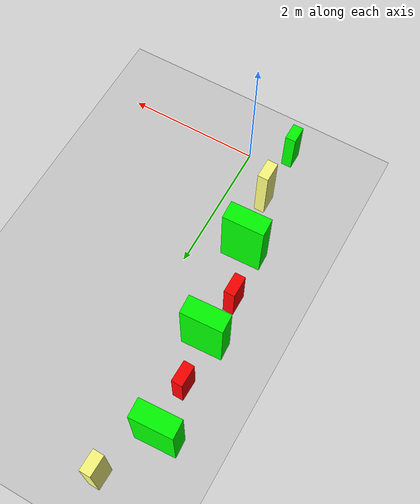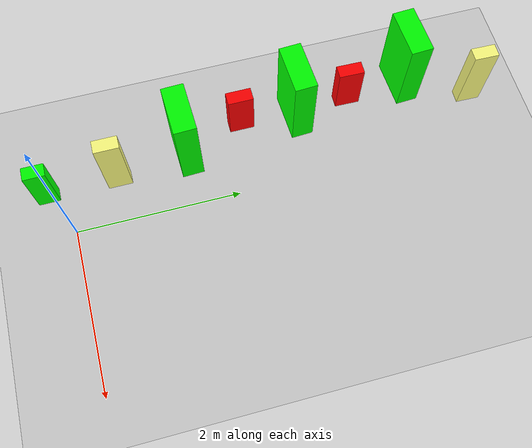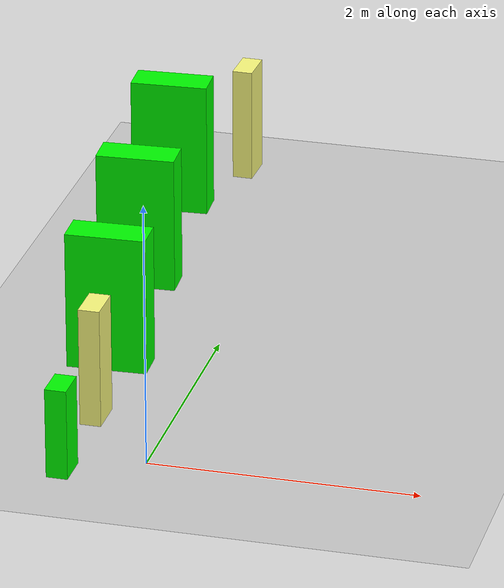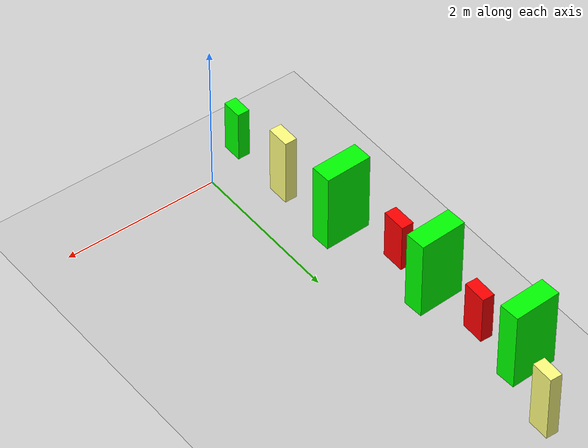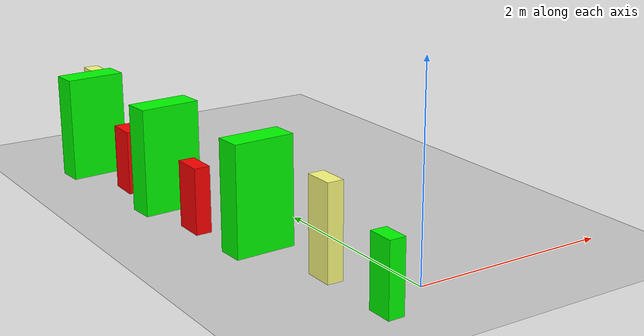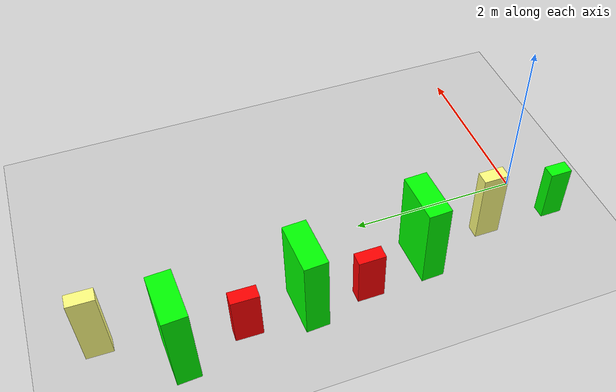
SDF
<sdf version="1.7">
 <world name="default">
  <scene><ambient>0.4 0.4 0.4 1</ambient><background>0.7 0.7 0.7 1</background><shadows>1</shadows></scene>
  <light name="sun" type="directional">
   <pose>0 0 10 0 -0 0</pose>
   <diffuse>0.8 0.8 0.8 1</diffuse>
   <specular>0.1 0.1 0.1 1</specular>
   <attenuation>
    <range>1000</range>
    <constant>0.9</constant>
    <linear>0.01</linear>
    <quadratic>0.001</quadratic>
   </attenuation>
   <direction>-0.5 0.5 -1</direction>
   <spot><inner_angle>0</inner_angle><outer_angle>0</outer_angle><falloff>0</falloff></spot>
  </light>
  <model name="ground_plane">
   <static>1</static>
   <link name="link">
    <collision name="collision">
     <geometry><plane><normal>0 0 1</normal><size>100 100</size></plane></geometry>
     <surface><friction><ode><mu>100</mu><mu2>50</mu2></ode></friction></surface>
    </collision>
    <visual name="visual">
     <cast_shadows>0</cast_shadows>
     <geometry><plane><normal>0 0 1</normal><size>100 100</size></plane></geometry>
     <material>
      <script><uri>file://media/materials/scripts/gazebo.material</uri><name>Gazebo/Grey</name></script>
     </material>
    </visual>
   </link>
  </model>
  <physics name="default_physics" default="0" type="ode">
   <real_time_update_rate>1000</real_time_update_rate>
   <max_step_size>0.001</max_step_size>
   <real_time_factor>1</real_time_factor>
   <ode>
    <solver>
     <type>quick</type>
     <iters>150</iters>
     <precon_iters>0</precon_iters>
     <sor>1.4</sor>
     <use_dynamic_moi_rescaling>1</use_dynamic_moi_rescaling>
    </solver>
    <constraints>
     <cfm>1e-05</cfm>
     <erp>0.2</erp>
     <contact_max_correcting_vel>2000</contact_max_correcting_vel>
     <contact_surface_layer>0.01</contact_surface_layer>
    </constraints>
   </ode>
  </physics>
  <gravity>0 0 -9.8</gravity>
  <magnetic_field>6e-06 2.3e-05 -4.2e-05</magnetic_field>
  <atmosphere type="adiabatic"/>
  <spherical_coordinates>
   <surface_model>EARTH_WGS84</surface_model>
   <latitude_deg>0</latitude_deg>
   <longitude_deg>0</longitude_deg>
   <elevation>0</elevation>
   <heading_deg>0</heading_deg>
  </spherical_coordinates>
  <model name="unit_box_0">
   <pose>-0.546741 -0.255161 0.34458 0 1e-06 1.6e-05</pose>
   <link name="link">
    <inertial>
     <mass>1</mass>
     <inertia>
      <ixx>0.166667</ixx>
      <ixy>0</ixy>
      <ixz>0</ixz>
      <iyy>0.166667</iyy>
      <iyz>0</iyz>
      <izz>0.166667</izz>
     </inertia>
    </inertial>
    <collision name="collision">
     <geometry><box><size>0.158214 0.260262 0.689159</size></box></geometry>
    </collision>
    <visual name="visual">
     <geometry><box><size>0.158214 0.260262 0.689159</size></box></geometry>
     <material>
      <script><name>Gazebo/Grey</name><uri>file://media/materials/scripts/gazebo.material</uri></script>
      <diffuse>0 1 0 1</diffuse>
     </material>
    </visual>
   </link>
  </model>
  <model name="unit_box_0_clone">
   <pose>-0.552334 0.617233 0.456716 0 1e-06 -7.2e-05</pose>
   <link name="link">
    <inertial>
     <mass>1</mass>
     <inertia>
      <ixx>0.166667</ixx>
      <ixy>0</ixy>
      <ixz>0</ixz>
      <iyy>0.166667</iyy>
      <iyz>0</iyz>
      <izz>0.166667</izz>
     </inertia>
    </inertial>
    <collision name="collision">
     <geometry><box><size>0.158214 0.295891 0.913432</size></box></geometry>
    </collision>
    <visual name="visual">
     <geometry><box><size>0.158214 0.295891 0.913432</size></box></geometry>
     <material>
      <script><name>Gazebo/Grey</name><uri>file://media/materials/scripts/gazebo.material</uri></script>
      <diffuse>1 1 0.5 1</diffuse>
     </material>
    </visual>
   </link>
  </model>
  <model name="unit_box_0_clone_0">
   <pose>-0.935156 2.24521 0.327101 0 -1e-06 0.000247</pose>
   <link name="link">
    <inertial>
     <mass>1</mass>
     <inertia>
      <ixx>0.166667</ixx>
      <ixy>0</ixy>
      <ixz>0</ixz>
      <iyy>0.166667</iyy>
      <iyz>0</iyz>
      <izz>0.166667</izz>
     </inertia>
    </inertial>
    <collision name="collision">
     <geometry><box><size>0.158214 0.310694 0.654203</size></box></geometry>
    </collision>
    <visual name="visual">
     <geometry><box><size>0.158214 0.310694 0.654203</size></box></geometry>
     <material>
      <script><name>Gazebo/Grey</name><uri>file://media/materials/scripts/gazebo.material</uri></script>
      <diffuse>1 0 0 1</diffuse>
     </material>
    </visual>
   </link>
  </model>
  <model name="unit_box_0_clone_1">
   <pose>-0.69845 1.5013 0.535371 -1e-06 -5e-06 0.036612</pose>
   <link name="link">
    <inertial>
     <mass>1</mass>
     <inertia>
      <ixx>0.166667</ixx>
      <ixy>0</ixy>
      <ixz>0</ixz>
      <iyy>0.166667</iyy>
      <iyz>0</iyz>
      <izz>0.166667</izz>
     </inertia>
    </inertial>
    <collision name="collision"><geometry><box><size>0.604983 0.267748 1.07075</size></box></geometry></collision>
    <visual name="visual">
     <geometry><box><size>0.604983 0.267748 1.07075</size></box></geometry>
     <material>
      <script><name>Gazebo/Grey</name><uri>file://media/materials/scripts/gazebo.material</uri></script>
      <diffuse>0 1 0 1</diffuse>
     </material>
    </visual>
   </link>
  </model>
  <model name="unit_box_0_clone_1_clone">
   <pose>-0.88482 2.93954 0.535376 -1e-06 2e-06 0.053326</pose>
   <link name="link">
    <inertial>
     <mass>1</mass>
     <inertia>
      <ixx>0.166667</ixx>
      <ixy>0</ixy>
      <ixz>0</ixz>
      <iyy>0.166667</iyy>
      <iyz>0</iyz>
      <izz>0.166667</izz>
     </inertia>
    </inertial>
    <collision name="collision"><geometry><box><size>0.604983 0.267748 1.07075</size></box></geometry></collision>
    <visual name="visual">
     <geometry><box><size>0.604983 0.267748 1.07075</size></box></geometry>
     <material>
      <script><name>Gazebo/Grey</name><uri>file://media/materials/scripts/gazebo.material</uri></script>
      <diffuse>0 1 0 1</diffuse>
     </material>
    </visual>
   </link>
  </model>
  <model name="unit_box_0_clone_0_clone">
   <pose>-0.954357 3.63804 0.327102 0 -0 -0.022207</pose>
   <link name="link">
    <inertial>
     <mass>1</mass>
     <inertia>
      <ixx>0.166667</ixx>
      <ixy>0</ixy>
      <ixz>0</ixz>
      <iyy>0.166667</iyy>
      <iyz>0</iyz>
      <izz>0.166667</izz>
     </inertia>
    </inertial>
    <collision name="collision">
     <geometry><box><size>0.158214 0.310694 0.654203</size></box></geometry>
    </collision>
    <visual name="visual">
     <geometry><box><size>0.158214 0.310694 0.654203</size></box></geometry>
     <material>
      <script><name>Gazebo/Grey</name><uri>file://media/materials/scripts/gazebo.material</uri></script>
      <diffuse>1 0 0 1</diffuse>
     </material>
    </visual>
   </link>
  </model>
  <model name="unit_box_0_clone_1_clone_clone">
   <pose>-1.02087 4.37558 0.535376 1e-06 2e-06 0.05337</pose>
   <link name="link">
    <inertial>
     <mass>1</mass>
     <inertia>
      <ixx>0.166667</ixx>
      <ixy>0</ixy>
      <ixz>0</ixz>
      <iyy>0.166667</iyy>
      <iyz>0</iyz>
      <izz>0.166667</izz>
     </inertia>
    </inertial>
    <collision name="collision"><geometry><box><size>0.604983 0.267748 1.07075</size></box></geometry></collision>
    <visual name="visual">
     <geometry><box><size>0.604983 0.267748 1.07075</size></box></geometry>
     <material>
      <script><name>Gazebo/Grey</name><uri>file://media/materials/scripts/gazebo.material</uri></script>
      <diffuse>0 1 0 1</diffuse>
     </material>
    </visual>
   </link>
  </model>
  <model name="unit_box_0_clone_clone">
   <pose>-0.618827 5.16409 0.456716 -0 1e-06 -0.022682</pose>
   <link name="link">
    <inertial>
     <mass>1</mass>
     <inertia>
      <ixx>0.166667</ixx>
      <ixy>0</ixy>
      <ixz>0</ixz>
      <iyy>0.166667</iyy>
      <iyz>0</iyz>
      <izz>0.166667</izz>
     </inertia>
    </inertial>
    <collision name="collision">
     <geometry><box><size>0.158214 0.295891 0.913432</size></box></geometry>
    </collision>
    <visual name="visual">
     <geometry><box><size>0.158214 0.295891 0.913432</size></box></geometry>
     <material>
      <script><name>Gazebo/Grey</name><uri>file://media/materials/scripts/gazebo.material</uri></script>
      <diffuse>1 1 0.5 1</diffuse>
     </material>
    </visual>
   </link>
  </model>
 </world>
</sdf>
